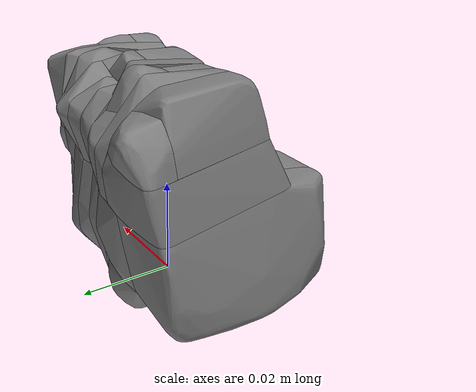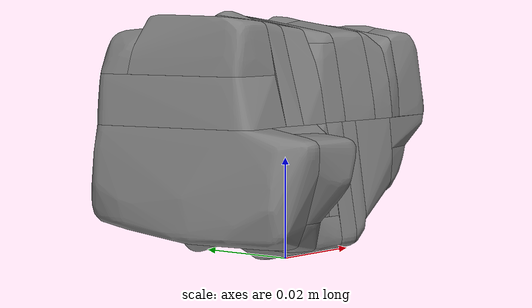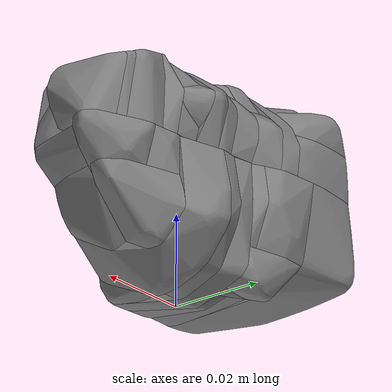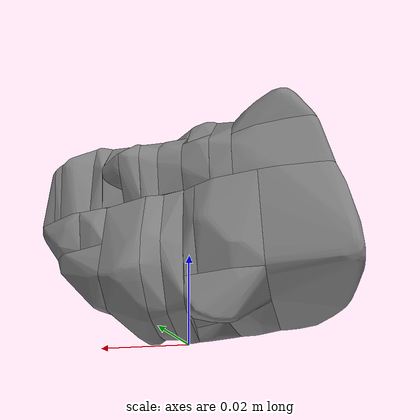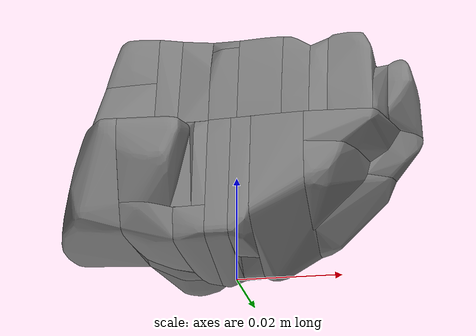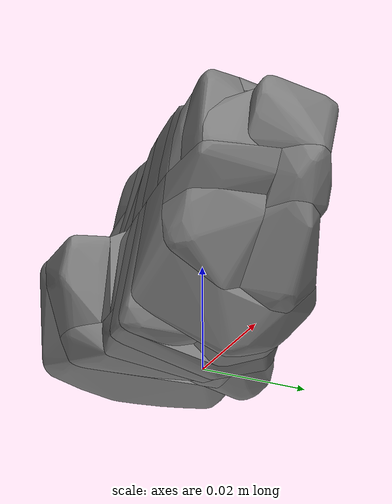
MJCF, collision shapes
<?xml version="1.0" ?>
<!-- @bbox dx=0.0700 dy=0.0460 dz=0.0485 -->
<mujoco model="mineral_calcite_blue">
  <asset>
    <texture type="2d" name="BlueCalcite" file="BlueCalcite.png"/>
    <material name="BlueCalcite" texture="BlueCalcite" specular="0.4000000000000001" shininess="0.001"/>
    <mesh file="mineral_calcite_blue.obj" scale="0.10187932423153155 0.10187932423153155 0.10187932423153155"/>
    <mesh file="mineral_calcite_blue/mineral_calcite_blue_collision_0.obj" scale="0.10187932423153155 0.10187932423153155 0.10187932423153155"/>
    <mesh file="mineral_calcite_blue/mineral_calcite_blue_collision_1.obj" scale="0.10187932423153155 0.10187932423153155 0.10187932423153155"/>
    <mesh file="mineral_calcite_blue/mineral_calcite_blue_collision_2.obj" scale="0.10187932423153155 0.10187932423153155 0.10187932423153155"/>
    <mesh file="mineral_calcite_blue/mineral_calcite_blue_collision_3.obj" scale="0.10187932423153155 0.10187932423153155 0.10187932423153155"/>
    <mesh file="mineral_calcite_blue/mineral_calcite_blue_collision_4.obj" scale="0.10187932423153155 0.10187932423153155 0.10187932423153155"/>
    <mesh file="mineral_calcite_blue/mineral_calcite_blue_collision_5.obj" scale="0.10187932423153155 0.10187932423153155 0.10187932423153155"/>
    <mesh file="mineral_calcite_blue/mineral_calcite_blue_collision_6.obj" scale="0.10187932423153155 0.10187932423153155 0.10187932423153155"/>
    <mesh file="mineral_calcite_blue/mineral_calcite_blue_collision_7.obj" scale="0.10187932423153155 0.10187932423153155 0.10187932423153155"/>
    <mesh file="mineral_calcite_blue/mineral_calcite_blue_collision_8.obj" scale="0.10187932423153155 0.10187932423153155 0.10187932423153155"/>
    <mesh file="mineral_calcite_blue/mineral_calcite_blue_collision_9.obj" scale="0.10187932423153155 0.10187932423153155 0.10187932423153155"/>
    <mesh file="mineral_calcite_blue/mineral_calcite_blue_collision_10.obj" scale="0.10187932423153155 0.10187932423153155 0.10187932423153155"/>
    <mesh file="mineral_calcite_blue/mineral_calcite_blue_collision_11.obj" scale="0.10187932423153155 0.10187932423153155 0.10187932423153155"/>
    <mesh file="mineral_calcite_blue/mineral_calcite_blue_collision_12.obj" scale="0.10187932423153155 0.10187932423153155 0.10187932423153155"/>
    <mesh file="mineral_calcite_blue/mineral_calcite_blue_collision_13.obj" scale="0.10187932423153155 0.10187932423153155 0.10187932423153155"/>
    <mesh file="mineral_calcite_blue/mineral_calcite_blue_collision_14.obj" scale="0.10187932423153155 0.10187932423153155 0.10187932423153155"/>
    <mesh file="mineral_calcite_blue/mineral_calcite_blue_collision_15.obj" scale="0.10187932423153155 0.10187932423153155 0.10187932423153155"/>
    <mesh file="mineral_calcite_blue/mineral_calcite_blue_collision_16.obj" scale="0.10187932423153155 0.10187932423153155 0.10187932423153155"/>
    <mesh file="mineral_calcite_blue/mineral_calcite_blue_collision_17.obj" scale="0.10187932423153155 0.10187932423153155 0.10187932423153155"/>
    <mesh file="mineral_calcite_blue/mineral_calcite_blue_collision_18.obj" scale="0.10187932423153155 0.10187932423153155 0.10187932423153155"/>
    <mesh file="mineral_calcite_blue/mineral_calcite_blue_collision_19.obj" scale="0.10187932423153155 0.10187932423153155 0.10187932423153155"/>
    <mesh file="mineral_calcite_blue/mineral_calcite_blue_collision_20.obj" scale="0.10187932423153155 0.10187932423153155 0.10187932423153155"/>
    <mesh file="mineral_calcite_blue/mineral_calcite_blue_collision_21.obj" scale="0.10187932423153155 0.10187932423153155 0.10187932423153155"/>
    <mesh file="mineral_calcite_blue/mineral_calcite_blue_collision_22.obj" scale="0.10187932423153155 0.10187932423153155 0.10187932423153155"/>
    <mesh file="mineral_calcite_blue/mineral_calcite_blue_collision_23.obj" scale="0.10187932423153155 0.10187932423153155 0.10187932423153155"/>
    <mesh file="mineral_calcite_blue/mineral_calcite_blue_collision_24.obj" scale="0.10187932423153155 0.10187932423153155 0.10187932423153155"/>
    <mesh file="mineral_calcite_blue/mineral_calcite_blue_collision_25.obj" scale="0.10187932423153155 0.10187932423153155 0.10187932423153155"/>
    <mesh file="mineral_calcite_blue/mineral_calcite_blue_collision_26.obj" scale="0.10187932423153155 0.10187932423153155 0.10187932423153155"/>
    <mesh file="mineral_calcite_blue/mineral_calcite_blue_collision_27.obj" scale="0.10187932423153155 0.10187932423153155 0.10187932423153155"/>
    <mesh file="mineral_calcite_blue/mineral_calcite_blue_collision_28.obj" scale="0.10187932423153155 0.10187932423153155 0.10187932423153155"/>
    <mesh file="mineral_calcite_blue/mineral_calcite_blue_collision_29.obj" scale="0.10187932423153155 0.10187932423153155 0.10187932423153155"/>
    <mesh file="mineral_calcite_blue/mineral_calcite_blue_collision_30.obj" scale="0.10187932423153155 0.10187932423153155 0.10187932423153155"/>
    <mesh file="mineral_calcite_blue/mineral_calcite_blue_collision_31.obj" scale="0.10187932423153155 0.10187932423153155 0.10187932423153155"/>
    <mesh file="mineral_calcite_blue/mineral_calcite_blue_collision_32.obj" scale="0.10187932423153155 0.10187932423153155 0.10187932423153155"/>
    <mesh file="mineral_calcite_blue/mineral_calcite_blue_collision_33.obj" scale="0.10187932423153155 0.10187932423153155 0.10187932423153155"/>
    <mesh file="mineral_calcite_blue/mineral_calcite_blue_collision_34.obj" scale="0.10187932423153155 0.10187932423153155 0.10187932423153155"/>
    <mesh file="mineral_calcite_blue/mineral_calcite_blue_collision_35.obj" scale="0.10187932423153155 0.10187932423153155 0.10187932423153155"/>
    <mesh file="mineral_calcite_blue/mineral_calcite_blue_collision_36.obj" scale="0.10187932423153155 0.10187932423153155 0.10187932423153155"/>
    <mesh file="mineral_calcite_blue/mineral_calcite_blue_collision_37.obj" scale="0.10187932423153155 0.10187932423153155 0.10187932423153155"/>
    <mesh file="mineral_calcite_blue/mineral_calcite_blue_collision_38.obj" scale="0.10187932423153155 0.10187932423153155 0.10187932423153155"/>
    <mesh file="mineral_calcite_blue/mineral_calcite_blue_collision_39.obj" scale="0.10187932423153155 0.10187932423153155 0.10187932423153155"/>
    <mesh file="mineral_calcite_blue/mineral_calcite_blue_collision_40.obj" scale="0.10187932423153155 0.10187932423153155 0.10187932423153155"/>
    <mesh file="mineral_calcite_blue/mineral_calcite_blue_collision_41.obj" scale="0.10187932423153155 0.10187932423153155 0.10187932423153155"/>
  </asset>
  <worldbody>
    <body name="mineral_calcite_blue">
      <inertial pos="0 0 0.024250" mass="0.02" diaginertia="0.0008 0.0008 0.0005"/>
      <geom material="BlueCalcite" mesh="mineral_calcite_blue" class="visual"/>
      <geom mesh="mineral_calcite_blue_collision_0"  class="collision"/>
      <geom mesh="mineral_calcite_blue_collision_1"  class="collision"/>
      <geom mesh="mineral_calcite_blue_collision_2"  class="collision"/>
      <geom mesh="mineral_calcite_blue_collision_3"  class="collision"/>
      <geom mesh="mineral_calcite_blue_collision_4"  class="collision"/>
      <geom mesh="mineral_calcite_blue_collision_5"  class="collision"/>
      <geom mesh="mineral_calcite_blue_collision_6"  class="collision"/>
      <geom mesh="mineral_calcite_blue_collision_7"  class="collision"/>
      <geom mesh="mineral_calcite_blue_collision_8"  class="collision"/>
      <geom mesh="mineral_calcite_blue_collision_9"  class="collision"/>
      <geom mesh="mineral_calcite_blue_collision_10"  class="collision"/>
      <geom mesh="mineral_calcite_blue_collision_11"  class="collision"/>
      <geom mesh="mineral_calcite_blue_collision_12"  class="collision"/>
      <geom mesh="mineral_calcite_blue_collision_13"  class="collision"/>
      <geom mesh="mineral_calcite_blue_collision_14"  class="collision"/>
      <geom mesh="mineral_calcite_blue_collision_15"  class="collision"/>
      <geom mesh="mineral_calcite_blue_collision_16"  class="collision"/>
      <geom mesh="mineral_calcite_blue_collision_17"  class="collision"/>
      <geom mesh="mineral_calcite_blue_collision_18"  class="collision"/>
      <geom mesh="mineral_calcite_blue_collision_19"  class="collision"/>
      <geom mesh="mineral_calcite_blue_collision_20"  class="collision"/>
      <geom mesh="mineral_calcite_blue_collision_21"  class="collision"/>
      <geom mesh="mineral_calcite_blue_collision_22"  class="collision"/>
      <geom mesh="mineral_calcite_blue_collision_23"  class="collision"/>
      <geom mesh="mineral_calcite_blue_collision_24"  class="collision"/>
      <geom mesh="mineral_calcite_blue_collision_25"  class="collision"/>
      <geom mesh="mineral_calcite_blue_collision_26"  class="collision"/>
      <geom mesh="mineral_calcite_blue_collision_27"  class="collision"/>
      <geom mesh="mineral_calcite_blue_collision_28"  class="collision"/>
      <geom mesh="mineral_calcite_blue_collision_29"  class="collision"/>
      <geom mesh="mineral_calcite_blue_collision_30"  class="collision"/>
      <geom mesh="mineral_calcite_blue_collision_31"  class="collision"/>
      <geom mesh="mineral_calcite_blue_collision_32"  class="collision"/>
      <geom mesh="mineral_calcite_blue_collision_33"  class="collision"/>
      <geom mesh="mineral_calcite_blue_collision_34"  class="collision"/>
      <geom mesh="mineral_calcite_blue_collision_35"  class="collision"/>
      <geom mesh="mineral_calcite_blue_collision_36"  class="collision"/>
      <geom mesh="mineral_calcite_blue_collision_37"  class="collision"/>
      <geom mesh="mineral_calcite_blue_collision_38"  class="collision"/>
      <geom mesh="mineral_calcite_blue_collision_39"  class="collision"/>
      <geom mesh="mineral_calcite_blue_collision_40"  class="collision"/>
      <geom mesh="mineral_calcite_blue_collision_41"  class="collision"/>
          <site class="grasppoint" group="4" pos="0.0000 0.0000 0.0242"/>
      <site class="boundpoint" group="3" name="bnd_p0"   pos="-0.0350 -0.0230 0.0000"/>
      <site class="boundpoint" group="3" name="bnd_px"   pos="0.0350 -0.0230 0.0000"/>
      <site class="boundpoint" group="3" name="bnd_py"   pos="-0.0350 0.0230 0.0000"/>
      <site class="boundpoint" group="3" name="bnd_pxy"  pos="0.0350 0.0230 0.0000"/>
      <site class="boundpoint" group="3" name="bnd_pz"   pos="-0.0350 -0.0230 0.0485"/>
      <site class="boundpoint" group="3" name="bnd_pxz"  pos="0.0350 -0.0230 0.0485"/>
      <site class="boundpoint" group="3" name="bnd_pyz"  pos="-0.0350 0.0230 0.0485"/>
      <site class="boundpoint" group="3" name="bnd_pxyz" pos="0.0350 0.0230 0.0485"/>
      <site name="top_site" pos="0 0 0.0485" size="0.01" rgba="1 0 0 0"/>
      <site name="bottom_site" pos="0 0 0" size="0.01" rgba="0 1 0 0"/>
</body>
  </worldbody>
  <compiler boundmass="0.015" boundinertia="1e-05" angle="radian"/>
  <default>
    <default class="visual">
      <geom group="2" type="mesh" contype="0" conaffinity="0" density="50"/>
    </default>
    <default class="collision">
      <geom group="3" type="mesh" density="50" friction="1.5 0.1 0.1" solimp="0.9 0.95 0.001" solref="0.02 1"/>
    </default>
    <default class="grasppoint">
      <site type="sphere" size="0.005" group="4" rgba="0 0 1 1"/>
    </default>
        <default class="boundpoint"><site type="sphere" size="0.01" group="3" rgba="1 0 0 1"/></default>
      <default class="placepoint"><site type="sphere" size="0.01" group="2" rgba="0 0 1 0"/></default>
</default>
</mujoco>
